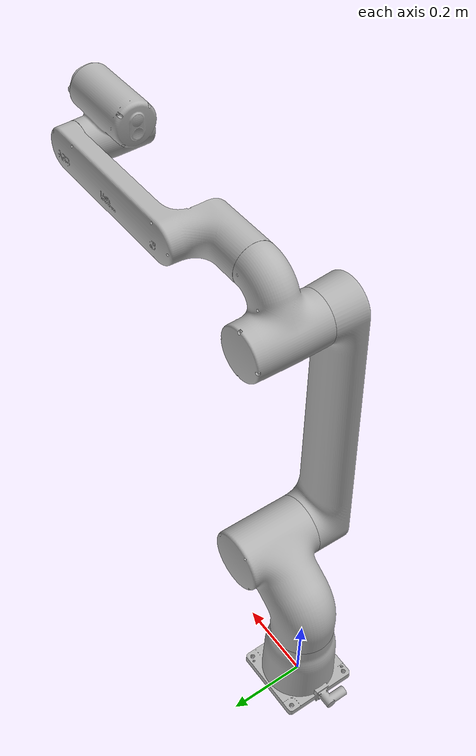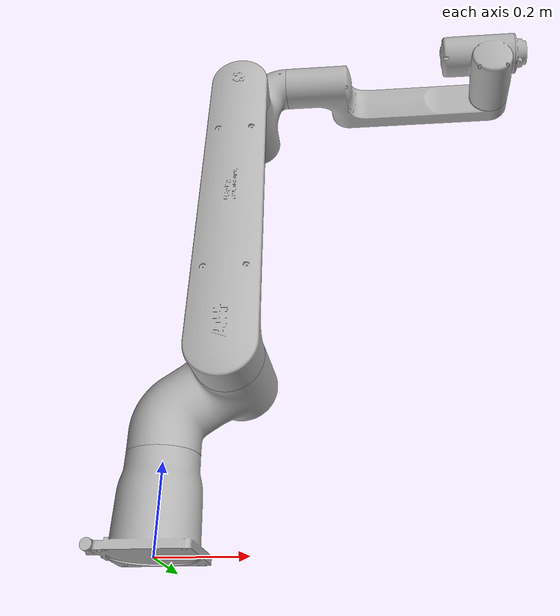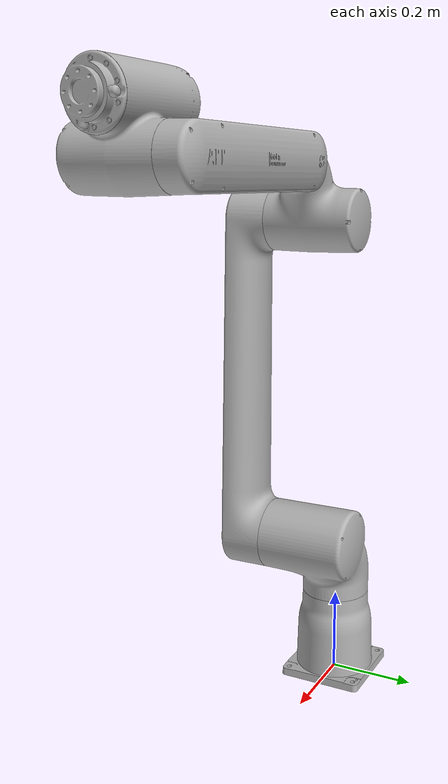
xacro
<?xml version="1.0"?>
<robot xmlns:xacro="http://www.ros.org/wiki/xacro" name="robotarm">
    <xacro:arg name="initial_positions_file" default="initial_positions.yaml" />

    <!-- Import robotarm urdf file -->
    <xacro:include filename="$(find robotarm_pkg)/urdf/robotarm.urdf" />

    <!-- Import control_xacro -->
    <xacro:include filename="robotarm.ros2_control.xacro" />

    <xacro:robotarm_ros2_control name="FakeSystem" initial_positions_file="$(arg initial_positions_file)"/>

</robot>

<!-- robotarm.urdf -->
<!-- |    This document was autogenerated by xacro from urdf/robotarm.xacro           | -->
<!-- |    EDITING THIS FILE BY HAND IS NOT RECOMMENDED                                 | -->
<robot name="robotarm">
  <material name="silver">
    <color rgba="0.700 0.700 0.700 1.000"/>
  </material>
  <transmission name="Revolute 1_tran">
    <type>transmission_interface/SimpleTransmission</type>
    <joint name="Revolute 1">
      <hardwareInterface>hardware_interface/EffortJointInterface</hardwareInterface>
    </joint>
    <actuator name="Revolute 1_actr">
      <hardwareInterface>hardware_interface/EffortJointInterface</hardwareInterface>
      <mechanicalReduction>1</mechanicalReduction>
    </actuator>
  </transmission>
  <transmission name="Revolute 2_tran">
    <type>transmission_interface/SimpleTransmission</type>
    <joint name="Revolute 2">
      <hardwareInterface>hardware_interface/EffortJointInterface</hardwareInterface>
    </joint>
    <actuator name="Revolute 2_actr">
      <hardwareInterface>hardware_interface/EffortJointInterface</hardwareInterface>
      <mechanicalReduction>1</mechanicalReduction>
    </actuator>
  </transmission>
  <transmission name="Revolute 3_tran">
    <type>transmission_interface/SimpleTransmission</type>
    <joint name="Revolute 3">
      <hardwareInterface>hardware_interface/EffortJointInterface</hardwareInterface>
    </joint>
    <actuator name="Revolute 3_actr">
      <hardwareInterface>hardware_interface/EffortJointInterface</hardwareInterface>
      <mechanicalReduction>1</mechanicalReduction>
    </actuator>
  </transmission>
  <transmission name="Revolute 4_tran">
    <type>transmission_interface/SimpleTransmission</type>
    <joint name="Revolute 4">
      <hardwareInterface>hardware_interface/EffortJointInterface</hardwareInterface>
    </joint>
    <actuator name="Revolute 4_actr">
      <hardwareInterface>hardware_interface/EffortJointInterface</hardwareInterface>
      <mechanicalReduction>1</mechanicalReduction>
    </actuator>
  </transmission>
  <transmission name="Revolute 5_tran">
    <type>transmission_interface/SimpleTransmission</type>
    <joint name="Revolute 5">
      <hardwareInterface>hardware_interface/EffortJointInterface</hardwareInterface>
    </joint>
    <actuator name="Revolute 5_actr">
      <hardwareInterface>hardware_interface/EffortJointInterface</hardwareInterface>
      <mechanicalReduction>1</mechanicalReduction>
    </actuator>
  </transmission>
  <transmission name="Revolute 6_tran">
    <type>transmission_interface/SimpleTransmission</type>
    <joint name="Revolute 6">
      <hardwareInterface>hardware_interface/EffortJointInterface</hardwareInterface>
    </joint>
    <actuator name="Revolute 6_actr">
      <hardwareInterface>hardware_interface/EffortJointInterface</hardwareInterface>
      <mechanicalReduction>1</mechanicalReduction>
    </actuator>
  </transmission>
  <gazebo>
    <plugin filename="libgazebo_ros_control.so" name="control"/>
  </gazebo>
  <gazebo reference="base_link">
    <material>Gazebo/Silver</material>
    <mu1>0.2</mu1>
    <mu2>0.2</mu2>
    <self_collide>true</self_collide>
    <gravity>true</gravity>
  </gazebo>
  <gazebo reference="gofaLink1_1">
    <material>Gazebo/Silver</material>
    <mu1>0.2</mu1>
    <mu2>0.2</mu2>
    <self_collide>true</self_collide>
  </gazebo>
  <gazebo reference="gofaLink2_1">
    <material>Gazebo/Silver</material>
    <mu1>0.2</mu1>
    <mu2>0.2</mu2>
    <self_collide>true</self_collide>
  </gazebo>
  <gazebo reference="gofaLink3_1">
    <material>Gazebo/Silver</material>
    <mu1>0.2</mu1>
    <mu2>0.2</mu2>
    <self_collide>true</self_collide>
  </gazebo>
  <gazebo reference="gofaLink4_1">
    <material>Gazebo/Silver</material>
    <mu1>0.2</mu1>
    <mu2>0.2</mu2>
    <self_collide>true</self_collide>
  </gazebo>
  <gazebo reference="gofaLink5_1">
    <material>Gazebo/Silver</material>
    <mu1>0.2</mu1>
    <mu2>0.2</mu2>
    <self_collide>true</self_collide>
  </gazebo>
  <gazebo reference="gofaLink6_1">
    <material>Gazebo/Silver</material>
    <mu1>0.2</mu1>
    <mu2>0.2</mu2>
    <self_collide>true</self_collide>
  </gazebo>
  <link name="base_link">
    <inertial>
      <origin rpy="0 0 0" xyz="-0.0011656606666003504 -0.00011127786600189595 0.0985691713362607"/>
      <mass value="43.321834194728716"/>
      <inertia ixx="0.254824" ixy="-0.000567" ixz="-0.003894" iyy="0.26074" iyz="-0.000372" izz="0.191484"/>
    </inertial>
    <visual>
      <origin rpy="0 0 0" xyz="0 0 0"/>
      <geometry>
        <mesh filename="package://robotarm_pkg/meshes/base_link.stl" scale="0.001 0.001 0.001"/>
      </geometry>
      <material name="silver"/>
    </visual>
    <collision>
      <origin rpy="0 0 0" xyz="0 0 0"/>
      <geometry>
        <mesh filename="package://robotarm_pkg/meshes/base_link.stl" scale="0.001 0.001 0.001"/>
      </geometry>
    </collision>
  </link>
  <link name="gofaLink1_1">
    <inertial>
      <origin rpy="0 0 0" xyz="0.08775396256757084 0.002893616666975796 0.1378283174314958"/>
      <mass value="62.51980324184264"/>
      <inertia ixx="0.432285" ixy="-0.011248" ixz="-0.212957" iyy="0.648762" iyz="-0.008525" izz="0.530762"/>
    </inertial>
    <visual>
      <origin rpy="0 0 0" xyz="0.0 -0.0 -0.214"/>
      <geometry>
        <mesh filename="package://robotarm_pkg/meshes/gofaLink1_1.stl" scale="0.001 0.001 0.001"/>
      </geometry>
      <material name="silver"/>
    </visual>
    <collision>
      <origin rpy="0 0 0" xyz="0.0 -0.0 -0.214"/>
      <geometry>
        <mesh filename="package://robotarm_pkg/meshes/gofaLink1_1.stl" scale="0.001 0.001 0.001"/>
      </geometry>
    </collision>
  </link>
  <link name="gofaLink2_1">
    <inertial>
      <origin rpy="0 0 0" xyz="0.31995365374658724 -0.054321420061314976 -2.7314906564379626e-07"/>
      <mass value="70.93354798589776"/>
      <inertia ixx="0.149369" ixy="-0.067787" ixz="-0.0" iyy="4.624741" iyz="-0.0" izz="4.56467"/>
    </inertial>
    <visual>
      <origin rpy="0 0 0" xyz="-0.15 0.09515 -0.399"/>
      <geometry>
        <mesh filename="package://robotarm_pkg/meshes/gofaLink2_1.stl" scale="0.001 0.001 0.001"/>
      </geometry>
      <material name="silver"/>
    </visual>
    <collision>
      <origin rpy="0 0 0" xyz="-0.15 0.09515 -0.399"/>
      <geometry>
        <mesh filename="package://robotarm_pkg/meshes/gofaLink2_1.stl" scale="0.001 0.001 0.001"/>
      </geometry>
    </collision>
  </link>
  <link name="gofaLink3_1">
    <inertial>
      <origin rpy="0 0 0" xyz="0.012899169796362742 0.09273702866323792 0.02490709910095318"/>
      <mass value="26.381731962599428"/>
      <inertia ixx="0.13578" ixy="0.002633" ixz="-0.024959" iyy="0.109622" iyz="0.005085" izz="0.102204"/>
    </inertial>
    <visual>
      <origin rpy="0 0 0" xyz="-0.857 0.0853 -0.399"/>
      <geometry>
        <mesh filename="package://robotarm_pkg/meshes/gofaLink3_1.stl" scale="0.001 0.001 0.001"/>
      </geometry>
      <material name="silver"/>
    </visual>
    <collision>
      <origin rpy="0 0 0" xyz="-0.857 0.0853 -0.399"/>
      <geometry>
        <mesh filename="package://robotarm_pkg/meshes/gofaLink3_1.stl" scale="0.001 0.001 0.001"/>
      </geometry>
    </collision>
  </link>
  <link name="gofaLink4_1">
    <inertial>
      <origin rpy="0 0 0" xyz="0.24142600169891282 0.06277136599401421 -6.660927853729959e-08"/>
      <mass value="32.07373529182173"/>
      <inertia ixx="0.109104" ixy="-0.193212" ixz="1e-06" iyy="0.893836" iyz="0.0" izz="0.956574"/>
    </inertial>
    <visual>
      <origin rpy="0 0 0" xyz="-0.953 0.0003 -0.509"/>
      <geometry>
        <mesh filename="package://robotarm_pkg/meshes/gofaLink4_1.stl" scale="0.001 0.001 0.001"/>
      </geometry>
      <material name="silver"/>
    </visual>
    <collision>
      <origin rpy="0 0 0" xyz="-0.953 0.0003 -0.509"/>
      <geometry>
        <mesh filename="package://robotarm_pkg/meshes/gofaLink4_1.stl" scale="0.001 0.001 0.001"/>
      </geometry>
    </collision>
  </link>
  <link name="gofaLink5_1">
    <inertial>
      <origin rpy="0 0 0" xyz="-0.01471488169844859 -0.07856679038657811 0.04275415132694682"/>
      <mass value="23.63754712652309"/>
      <inertia ixx="0.089965" ixy="0.001415" ixz="0.012969" iyy="0.106463" iyz="-0.004125" izz="0.085163"/>
    </inertial>
    <visual>
      <origin rpy="0 0 0" xyz="-1.492883 -0.0752 -0.509"/>
      <geometry>
        <mesh filename="package://robotarm_pkg/meshes/gofaLink5_1.stl" scale="0.001 0.001 0.001"/>
      </geometry>
      <material name="silver"/>
    </visual>
    <collision>
      <origin rpy="0 0 0" xyz="-1.492883 -0.0752 -0.509"/>
      <geometry>
        <mesh filename="package://robotarm_pkg/meshes/gofaLink5_1.stl" scale="0.001 0.001 0.001"/>
      </geometry>
    </collision>
  </link>
  <link name="gofaLink6_1">
    <inertial>
      <origin rpy="0 0 0" xyz="0.012750653728679673 0.0002398166174549805 -0.00034201577003445394"/>
      <mass value="1.1500367477209656"/>
      <inertia ixx="0.001012" ixy="-1e-06" ixz="1e-06" iyy="0.000597" iyz="-5e-06" izz="0.000601"/>
    </inertial>
    <visual>
      <origin rpy="0 0 0" xyz="-1.560883 -0.0007 -0.589"/>
      <geometry>
        <mesh filename="package://robotarm_pkg/meshes/gofaLink6_1.stl" scale="0.001 0.001 0.001"/>
      </geometry>
      <material name="silver"/>
    </visual>
    <collision>
      <origin rpy="0 0 0" xyz="-1.560883 -0.0007 -0.589"/>
      <geometry>
        <mesh filename="package://robotarm_pkg/meshes/gofaLink6_1.stl" scale="0.001 0.001 0.001"/>
      </geometry>
    </collision>
  </link>
  <joint name="Revolute 1" type="revolute">
    <origin rpy="0 0 0" xyz="0.0 0.0 0.214"/>
    <parent link="base_link"/>
    <child link="gofaLink1_1"/>
    <axis xyz="-0.0 0.0 1.0"/>
    <limit lower="-4.712389" upper="4.712389" velocity="3.054" effort="100.0"/>
  </joint>
  <joint name="Revolute 2" type="revolute">
    <origin rpy="0 -1.5707963268 0" xyz="0.15 -0.09515 0.185"/>
    <parent link="gofaLink1_1"/>
    <child link="gofaLink2_1"/>
    <axis xyz="0.0 1.0 -0.0"/>
    <limit lower="-3.1416" upper="3.1416" velocity="3.054" effort="100.0"/>
  </joint>
  <joint name="Revolute 3" type="revolute">
    <origin rpy="0 1.5707963268 0" xyz="0.707 0.00985 0.0"/>
    <parent link="gofaLink2_1"/>
    <child link="gofaLink3_1"/>
    <axis xyz="0.0 1.0 -0.0"/>
    <limit lower="-3.9270" upper="1.48353" velocity="3.054" effort="100.0"/>
  </joint>
  <joint name="Revolute 4" type="revolute">
    <origin rpy="0 0 0" xyz="0.096 0.085 0.11"/>
    <parent link="gofaLink3_1"/>
    <child link="gofaLink4_1"/>
    <axis xyz="1.0 -0.0 0.0"/>
    <limit lower="-3.1416" upper="3.1416" velocity="3.054" effort="100.0"/>
  </joint>
  <joint name="Revolute 5" type="revolute">
    <origin rpy="0 0 0" xyz="0.539883 0.0755 0.0"/>
    <parent link="gofaLink4_1"/>
    <child link="gofaLink5_1"/>
    <axis xyz="-0.0 1.0 -0.0"/>
    <limit lower="-3.1416" upper="3.1416" velocity="3.054" effort="100.0"/>
  </joint>
  <joint name="Revolute 6" type="revolute">
    <origin rpy="0 0 0" xyz="0.068 -0.0745 0.08"/>
    <parent link="gofaLink5_1"/>
    <child link="gofaLink6_1"/>
    <axis xyz="1.0 -0.0 -0.0"/>
    <limit lower="-4.7124" upper="4.7124" velocity="3.054" effort="100.0"/>
  </joint>
  <link name="tool0"/>
  <joint name="joint_tool0" type="fixed">
    <origin xyz="0.033 0 0" rpy="0 1.5708 0"/>
    <parent link="gofaLink6_1"/>
    <child link="tool0"/>
  </joint>
</robot>
